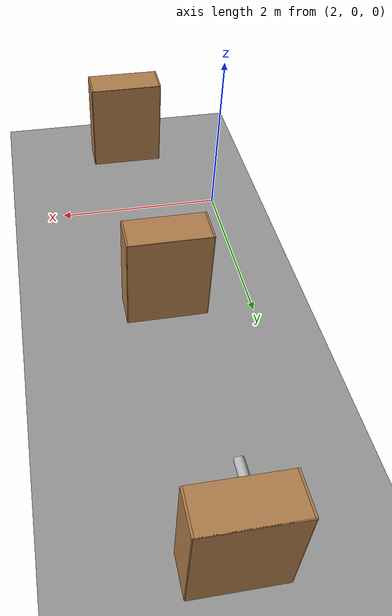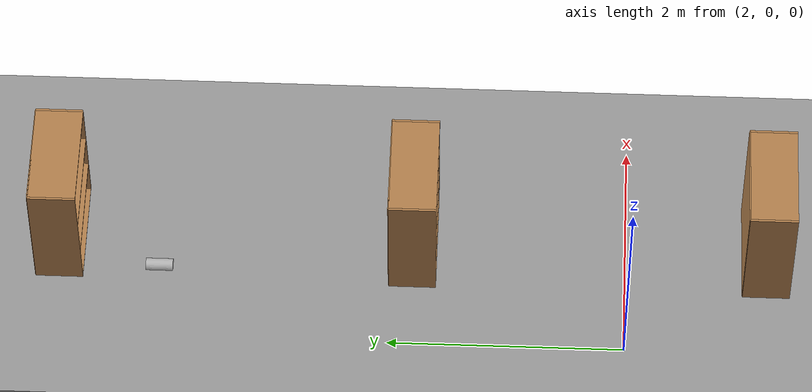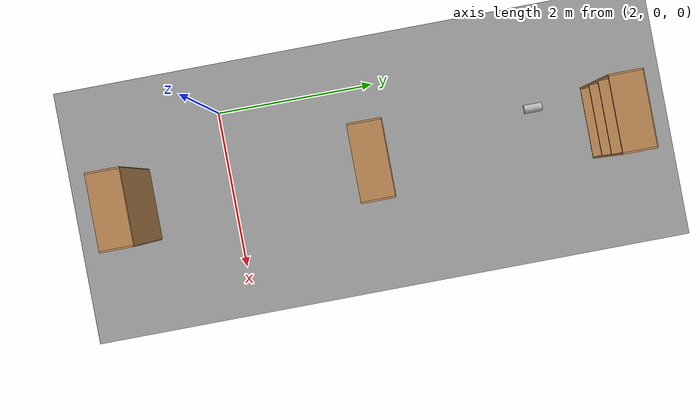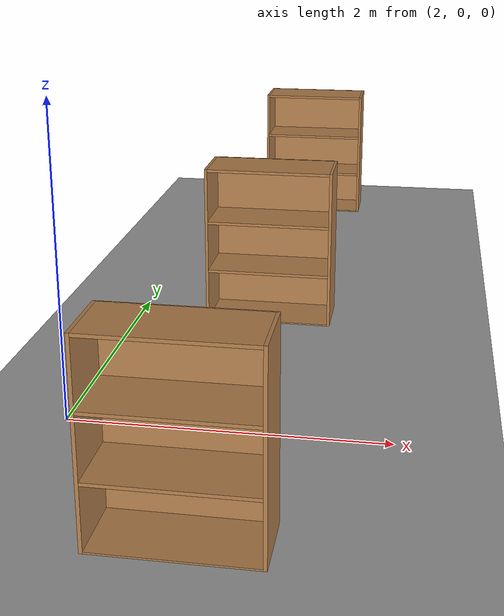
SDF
<sdf version="1.7">
 <world name="default">
  <model name="ground_plane">
   <static>1</static>
   <link name="link">
    <collision name="collision">
     <geometry><plane><normal>0 0 1</normal><size>100 100</size></plane></geometry>
     <surface>
      <contact><collide_bitmask>65535</collide_bitmask></contact>
      <friction><ode><mu>100</mu><mu2>50</mu2></ode></friction>
     </surface>
    </collision>
    <visual name="visual">
     <cast_shadows>0</cast_shadows>
     <geometry><plane><normal>0 0 1</normal><size>100 100</size></plane></geometry>
     <material>
      <script><uri>file://media/materials/scripts/gazebo.material</uri><name>Gazebo/Grey</name></script>
     </material>
    </visual>
    <enable_wind>1</enable_wind>
   </link>
   <enable_wind>1</enable_wind>
  </model>
  <model name="ground_plane_0">
   <static>1</static>
   <link name="link">
    <collision name="collision">
     <geometry><plane><normal>0 0 1</normal><size>100 100</size></plane></geometry>
     <surface>
      <contact><collide_bitmask>65535</collide_bitmask></contact>
      <friction><ode><mu>100</mu><mu2>50</mu2></ode></friction>
     </surface>
    </collision>
    <visual name="visual">
     <cast_shadows>0</cast_shadows>
     <geometry><plane><normal>0 0 1</normal><size>100 100</size></plane></geometry>
     <material>
      <script><uri>file://media/materials/scripts/gazebo.material</uri><name>Gazebo/Grey</name></script>
     </material>
    </visual>
   </link>
   <pose>2.21308 4.07074 0 0 -0 0</pose>
  </model>
  <model name="beer">
   <link name="link">
    <pose>0 0 0.115 0 -0 0</pose>
    <inertial>
     <mass>0.39</mass>
     <inertia><ixx>0.00058</ixx><ixy>0</ixy><ixz>0</ixz><iyy>0.00058</iyy><iyz>0</iyz><izz>0.00019</izz></inertia>
    </inertial>
    <collision name="collision">
     <geometry><cylinder><radius>0.055</radius><length>0.23</length></cylinder></geometry>
    </collision>
    <visual name="visual">
     <geometry><cylinder><radius>0.055</radius><length>0.23</length></cylinder></geometry>
     <material>
      <script>
       <uri>model://beer/materials/scripts</uri>
       <uri>model://beer/materials/textures</uri>
       <name>Beer/Diffuse</name>
      </script>
     </material>
    </visual>
   </link>
   <pose>2.68334 4.0757 0.054918 1.57043 -0.216841 7.8e-05</pose>
  </model>
  <model name="bookshelf_0_clone_1">
   <static>1</static>
   <link name="link">
    <inertial><mass>1</mass></inertial>
    <collision name="back">
     <pose>0 0.005 0.6 0 -0 0</pose>
     <geometry><box><size>0.9 0.01 1.2</size></box></geometry>
    </collision>
    <visual name="visual1">
     <pose>0 0.005 0.6 0 -0 0</pose>
     <geometry><box><size>0.9 0.01 1.2</size></box></geometry>
     <material>
      <script><uri>file://media/materials/scripts/gazebo.material</uri><name>Gazebo/Wood</name></script>
     </material>
    </visual>
    <collision name="left_side">
     <pose>0.45 -0.195 0.6 0 -0 0</pose>
     <geometry><box><size>0.02 0.4 1.2</size></box></geometry>
    </collision>
    <visual name="visual2">
     <pose>0.45 -0.195 0.6 0 -0 0</pose>
     <geometry><box><size>0.02 0.4 1.2</size></box></geometry>
     <material>
      <script><uri>file://media/materials/scripts/gazebo.material</uri><name>Gazebo/Wood</name></script>
     </material>
    </visual>
    <collision name="right_side">
     <pose>-0.45 -0.195 0.6 0 -0 0</pose>
     <geometry><box><size>0.02 0.4 1.2</size></box></geometry>
    </collision>
    <visual name="visual3">
     <pose>-0.45 -0.195 0.6 0 -0 0</pose>
     <geometry><box><size>0.02 0.4 1.2</size></box></geometry>
     <material>
      <script><uri>file://media/materials/scripts/gazebo.material</uri><name>Gazebo/Wood</name></script>
     </material>
    </visual>
    <collision name="bottom">
     <pose>0 -0.195 0.03 0 -0 0</pose>
     <geometry><box><size>0.88 0.4 0.06</size></box></geometry>
    </collision>
    <visual name="visual4">
     <pose>0 -0.195 0.03 0 -0 0</pose>
     <geometry><box><size>0.88 0.4 0.06</size></box></geometry>
     <material>
      <script><uri>file://media/materials/scripts/gazebo.material</uri><name>Gazebo/Wood</name></script>
     </material>
    </visual>
    <collision name="top">
     <pose>0 -0.195 1.19 0 -0 0</pose>
     <geometry><box><size>0.88 0.4 0.02</size></box></geometry>
    </collision>
    <visual name="visual5">
     <pose>0 -0.195 1.19 0 -0 0</pose>
     <geometry><box><size>0.88 0.4 0.02</size></box></geometry>
     <material>
      <script><uri>file://media/materials/scripts/gazebo.material</uri><name>Gazebo/Wood</name></script>
     </material>
    </visual>
    <collision name="low_shelf">
     <pose>0 -0.195 0.43 0 -0 0</pose>
     <geometry><box><size>0.88 0.4 0.02</size></box></geometry>
    </collision>
    <visual name="visual6">
     <pose>0 -0.195 0.43 0 -0 0</pose>
     <geometry><box><size>0.88 0.4 0.02</size></box></geometry>
     <material>
      <script><uri>file://media/materials/scripts/gazebo.material</uri><name>Gazebo/Wood</name></script>
     </material>
    </visual>
    <collision name="high_shelf">
     <pose>0 -0.195 0.8 0 -0 0</pose>
     <geometry><box><size>0.88 0.4 0.02</size></box></geometry>
    </collision>
    <visual name="visual7">
     <pose>0 -0.195 0.8 0 -0 0</pose>
     <geometry><box><size>0.88 0.4 0.02</size></box></geometry>
     <material>
      <script><uri>file://media/materials/scripts/gazebo.material</uri><name>Gazebo/Wood</name></script>
     </material>
    </visual>
   </link>
   <pose>3 2 0 0 -0 0</pose>
  </model>
  <model name="bookshelf_0_clone_2">
   <static>1</static>
   <link name="link">
    <inertial><mass>1</mass></inertial>
    <collision name="back">
     <pose>0 0.005 0.6 0 -0 0</pose>
     <geometry><box><size>0.9 0.01 1.2</size></box></geometry>
    </collision>
    <visual name="visual1">
     <pose>0 0.005 0.6 0 -0 0</pose>
     <geometry><box><size>0.9 0.01 1.2</size></box></geometry>
     <material>
      <script><uri>file://media/materials/scripts/gazebo.material</uri><name>Gazebo/Wood</name></script>
     </material>
    </visual>
    <collision name="left_side">
     <pose>0.45 -0.195 0.6 0 -0 0</pose>
     <geometry><box><size>0.02 0.4 1.2</size></box></geometry>
    </collision>
    <visual name="visual2">
     <pose>0.45 -0.195 0.6 0 -0 0</pose>
     <geometry><box><size>0.02 0.4 1.2</size></box></geometry>
     <material>
      <script><uri>file://media/materials/scripts/gazebo.material</uri><name>Gazebo/Wood</name></script>
     </material>
    </visual>
    <collision name="right_side">
     <pose>-0.45 -0.195 0.6 0 -0 0</pose>
     <geometry><box><size>0.02 0.4 1.2</size></box></geometry>
    </collision>
    <visual name="visual3">
     <pose>-0.45 -0.195 0.6 0 -0 0</pose>
     <geometry><box><size>0.02 0.4 1.2</size></box></geometry>
     <material>
      <script><uri>file://media/materials/scripts/gazebo.material</uri><name>Gazebo/Wood</name></script>
     </material>
    </visual>
    <collision name="bottom">
     <pose>0 -0.195 0.03 0 -0 0</pose>
     <geometry><box><size>0.88 0.4 0.06</size></box></geometry>
    </collision>
    <visual name="visual4">
     <pose>0 -0.195 0.03 0 -0 0</pose>
     <geometry><box><size>0.88 0.4 0.06</size></box></geometry>
     <material>
      <script><uri>file://media/materials/scripts/gazebo.material</uri><name>Gazebo/Wood</name></script>
     </material>
    </visual>
    <collision name="top">
     <pose>0 -0.195 1.19 0 -0 0</pose>
     <geometry><box><size>0.88 0.4 0.02</size></box></geometry>
    </collision>
    <visual name="visual5">
     <pose>0 -0.195 1.19 0 -0 0</pose>
     <geometry><box><size>0.88 0.4 0.02</size></box></geometry>
     <material>
      <script><uri>file://media/materials/scripts/gazebo.material</uri><name>Gazebo/Wood</name></script>
     </material>
    </visual>
    <collision name="low_shelf">
     <pose>0 -0.195 0.43 0 -0 0</pose>
     <geometry><box><size>0.88 0.4 0.02</size></box></geometry>
    </collision>
    <visual name="visual6">
     <pose>0 -0.195 0.43 0 -0 0</pose>
     <geometry><box><size>0.88 0.4 0.02</size></box></geometry>
     <material>
      <script><uri>file://media/materials/scripts/gazebo.material</uri><name>Gazebo/Wood</name></script>
     </material>
    </visual>
    <collision name="high_shelf">
     <pose>0 -0.195 0.8 0 -0 0</pose>
     <geometry><box><size>0.88 0.4 0.02</size></box></geometry>
    </collision>
    <visual name="visual7">
     <pose>0 -0.195 0.8 0 -0 0</pose>
     <geometry><box><size>0.88 0.4 0.02</size></box></geometry>
     <material>
      <script><uri>file://media/materials/scripts/gazebo.material</uri><name>Gazebo/Wood</name></script>
     </material>
    </visual>
   </link>
   <pose>3 5 0 0 -0 0</pose>
  </model>
  <model name="bookshelf_0_clone_3">
   <static>1</static>
   <link name="link">
    <inertial><mass>1</mass></inertial>
    <collision name="back">
     <pose>0 0.005 0.6 0 -0 0</pose>
     <geometry><box><size>0.9 0.01 1.2</size></box></geometry>
    </collision>
    <visual name="visual1">
     <pose>0 0.005 0.6 0 -0 0</pose>
     <geometry><box><size>0.9 0.01 1.2</size></box></geometry>
     <material>
      <script><uri>file://media/materials/scripts/gazebo.material</uri><name>Gazebo/Wood</name></script>
     </material>
    </visual>
    <collision name="left_side">
     <pose>0.45 -0.195 0.6 0 -0 0</pose>
     <geometry><box><size>0.02 0.4 1.2</size></box></geometry>
    </collision>
    <visual name="visual2">
     <pose>0.45 -0.195 0.6 0 -0 0</pose>
     <geometry><box><size>0.02 0.4 1.2</size></box></geometry>
     <material>
      <script><uri>file://media/materials/scripts/gazebo.material</uri><name>Gazebo/Wood</name></script>
     </material>
    </visual>
    <collision name="right_side">
     <pose>-0.45 -0.195 0.6 0 -0 0</pose>
     <geometry><box><size>0.02 0.4 1.2</size></box></geometry>
    </collision>
    <visual name="visual3">
     <pose>-0.45 -0.195 0.6 0 -0 0</pose>
     <geometry><box><size>0.02 0.4 1.2</size></box></geometry>
     <material>
      <script><uri>file://media/materials/scripts/gazebo.material</uri><name>Gazebo/Wood</name></script>
     </material>
    </visual>
    <collision name="bottom">
     <pose>0 -0.195 0.03 0 -0 0</pose>
     <geometry><box><size>0.88 0.4 0.06</size></box></geometry>
    </collision>
    <visual name="visual4">
     <pose>0 -0.195 0.03 0 -0 0</pose>
     <geometry><box><size>0.88 0.4 0.06</size></box></geometry>
     <material>
      <script><uri>file://media/materials/scripts/gazebo.material</uri><name>Gazebo/Wood</name></script>
     </material>
    </visual>
    <collision name="top">
     <pose>0 -0.195 1.19 0 -0 0</pose>
     <geometry><box><size>0.88 0.4 0.02</size></box></geometry>
    </collision>
    <visual name="visual5">
     <pose>0 -0.195 1.19 0 -0 0</pose>
     <geometry><box><size>0.88 0.4 0.02</size></box></geometry>
     <material>
      <script><uri>file://media/materials/scripts/gazebo.material</uri><name>Gazebo/Wood</name></script>
     </material>
    </visual>
    <collision name="low_shelf">
     <pose>0 -0.195 0.43 0 -0 0</pose>
     <geometry><box><size>0.88 0.4 0.02</size></box></geometry>
    </collision>
    <visual name="visual6">
     <pose>0 -0.195 0.43 0 -0 0</pose>
     <geometry><box><size>0.88 0.4 0.02</size></box></geometry>
     <material>
      <script><uri>file://media/materials/scripts/gazebo.material</uri><name>Gazebo/Wood</name></script>
     </material>
    </visual>
    <collision name="high_shelf">
     <pose>0 -0.195 0.8 0 -0 0</pose>
     <geometry><box><size>0.88 0.4 0.02</size></box></geometry>
    </collision>
    <visual name="visual7">
     <pose>0 -0.195 0.8 0 -0 0</pose>
     <geometry><box><size>0.88 0.4 0.02</size></box></geometry>
     <material>
      <script><uri>file://media/materials/scripts/gazebo.material</uri><name>Gazebo/Wood</name></script>
     </material>
    </visual>
   </link>
   <pose>3 -1 0 0 -0 0</pose>
  </model>
 </world>
</sdf>
